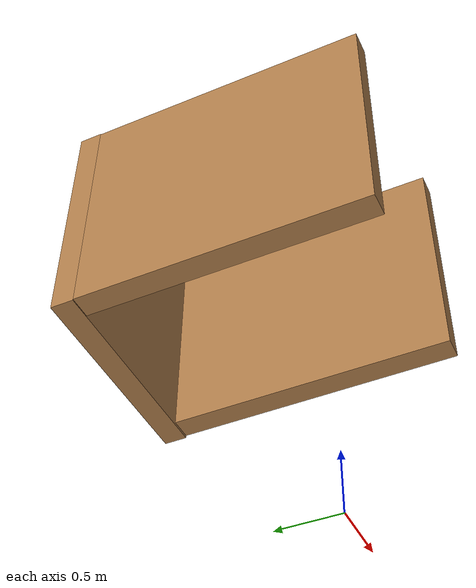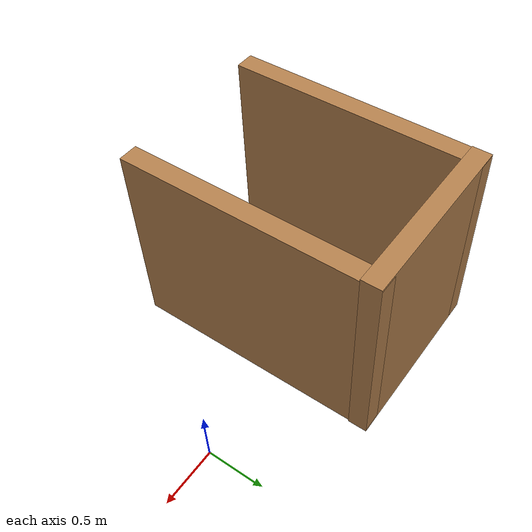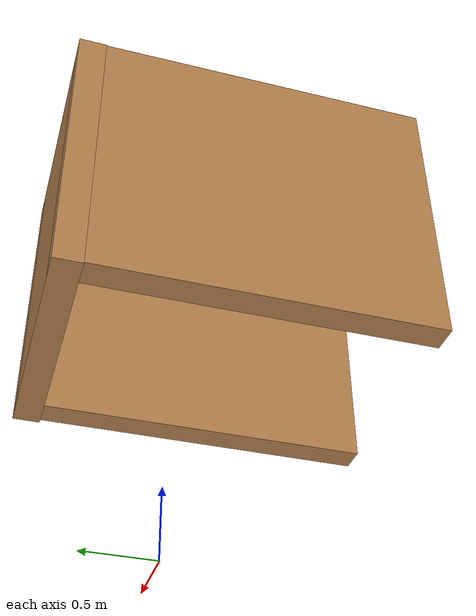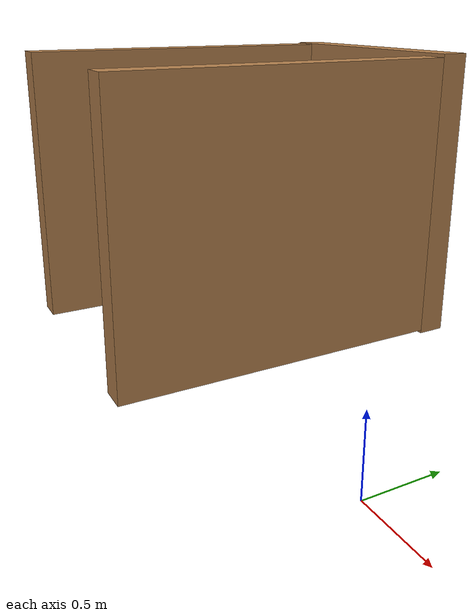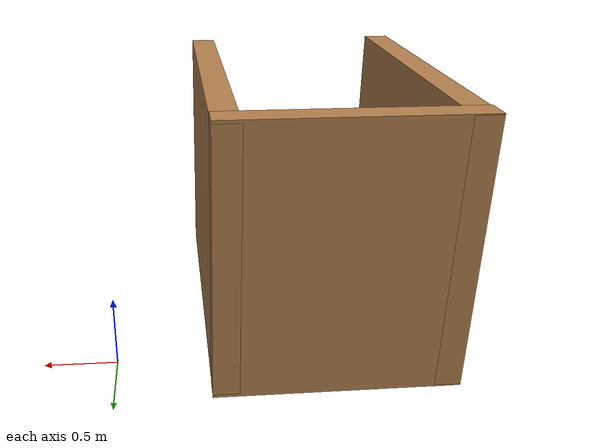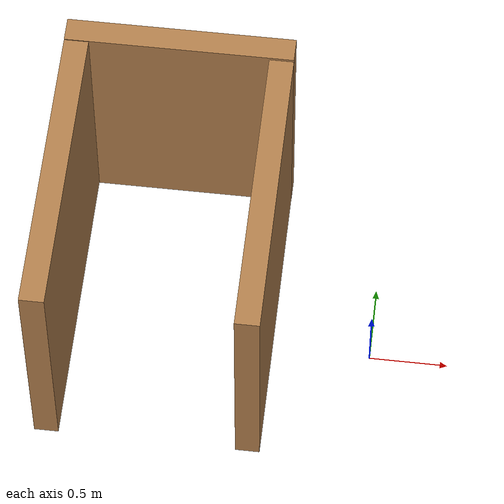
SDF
<?xml version='1.0'?>
<sdf version='1.7'>
  <model name='prova'>
    <link name='Wall_10'>
      <pose>-1.30093 0.924993 0 0 -0 3.14159</pose>
      <self_collide>0</self_collide>
      <enable_wind>0</enable_wind>
      <kinematic>0</kinematic>
      <inertial>
        <inertia>
          <ixx>0</ixx>
          <ixy>0</ixy>
          <ixz>0</ixz>
          <iyy>0</iyy>
          <iyz>0</iyz>
          <izz>0</izz>
        </inertia>
        <mass>0</mass>
        <pose>0 0 0 0 -0 0</pose>
      </inertial>
      <visual name='Wall_10_Visual'>
        <pose>0 0 1.25 0 -0 0</pose>
        <geometry>
          <box>
            <size>1.4 0.15 1.5828</size>
          </box>
        </geometry>
        <material>
          <script>
            <uri>file://media/materials/scripts/gazebo.material</uri>
            <name>Gazebo/Wood</name>
          </script>
          <ambient>1 1 1 1</ambient>
          <shader type='pixel'/>
        </material>
        <meta>
          <layer>0</layer>
        </meta>
        <transparency>0</transparency>
        <cast_shadows>1</cast_shadows>
      </visual>
      <collision name='Wall_10_Collision'>
        <laser_retro>0</laser_retro>
        <max_contacts>10</max_contacts>
        <pose>0 0 1.25 0 -0 0</pose>
        <geometry>
          <box>
            <size>1.4 0.15 1.5828</size>
          </box>
        </geometry>
        <surface>
          <friction>
            <ode>
              <mu>1</mu>
              <mu2>1</mu2>
              <fdir1>0 0 0</fdir1>
              <slip1>0</slip1>
              <slip2>0</slip2>
            </ode>
            <torsional>
              <coefficient>1</coefficient>
              <patch_radius>0</patch_radius>
              <surface_radius>0</surface_radius>
              <use_patch_radius>1</use_patch_radius>
              <ode>
                <slip>0</slip>
              </ode>
            </torsional>
          </friction>
          <bounce>
            <restitution_coefficient>0</restitution_coefficient>
            <threshold>1e+06</threshold>
          </bounce>
          <contact>
            <collide_without_contact>0</collide_without_contact>
            <collide_without_contact_bitmask>1</collide_without_contact_bitmask>
            <collide_bitmask>1</collide_bitmask>
            <ode>
              <soft_cfm>0</soft_cfm>
              <soft_erp>0.2</soft_erp>
              <kp>1e+13</kp>
              <kd>1</kd>
              <max_vel>0.01</max_vel>
              <min_depth>0</min_depth>
            </ode>
            <bullet>
              <split_impulse>1</split_impulse>
              <split_impulse_penetration_threshold>-0.01</split_impulse_penetration_threshold>
              <soft_cfm>0</soft_cfm>
              <soft_erp>0.2</soft_erp>
              <kp>1e+13</kp>
              <kd>1</kd>
            </bullet>
          </contact>
        </surface>
      </collision>
    </link>
    <link name='Wall_11'>
      <pose>-1.92593 0.004993 0 0 0 -1.5708</pose>
      <self_collide>0</self_collide>
      <enable_wind>0</enable_wind>
      <kinematic>0</kinematic>
      <inertial>
        <inertia>
          <ixx>0</ixx>
          <ixy>0</ixy>
          <ixz>0</ixz>
          <iyy>0</iyy>
          <iyz>0</iyz>
          <izz>0</izz>
        </inertia>
        <mass>0</mass>
        <pose>0 0 0 0 -0 0</pose>
      </inertial>
      <visual name='Wall_11_Visual'>
        <pose>0 0 1.25 0 -0 0</pose>
        <geometry>
          <box>
            <size>1.99003 0.15 1.57049</size>
          </box>
        </geometry>
        <material>
          <script>
            <uri>file://media/materials/scripts/gazebo.material</uri>
            <name>Gazebo/Wood</name>
          </script>
          <ambient>1 1 1 1</ambient>
          <shader type='pixel'/>
        </material>
        <meta>
          <layer>0</layer>
        </meta>
        <transparency>0</transparency>
        <cast_shadows>1</cast_shadows>
      </visual>
      <collision name='Wall_11_Collision'>
        <laser_retro>0</laser_retro>
        <max_contacts>10</max_contacts>
        <pose>0 0 1.25 0 -0 0</pose>
        <geometry>
          <box>
            <size>1.99003 0.15 1.57049</size>
          </box>
        </geometry>
        <surface>
          <friction>
            <ode>
              <mu>1</mu>
              <mu2>1</mu2>
              <fdir1>0 0 0</fdir1>
              <slip1>0</slip1>
              <slip2>0</slip2>
            </ode>
            <torsional>
              <coefficient>1</coefficient>
              <patch_radius>0</patch_radius>
              <surface_radius>0</surface_radius>
              <use_patch_radius>1</use_patch_radius>
              <ode>
                <slip>0</slip>
              </ode>
            </torsional>
          </friction>
          <bounce>
            <restitution_coefficient>0</restitution_coefficient>
            <threshold>1e+06</threshold>
          </bounce>
          <contact>
            <collide_without_contact>0</collide_without_contact>
            <collide_without_contact_bitmask>1</collide_without_contact_bitmask>
            <collide_bitmask>1</collide_bitmask>
            <ode>
              <soft_cfm>0</soft_cfm>
              <soft_erp>0.2</soft_erp>
              <kp>1e+13</kp>
              <kd>1</kd>
              <max_vel>0.01</max_vel>
              <min_depth>0</min_depth>
            </ode>
            <bullet>
              <split_impulse>1</split_impulse>
              <split_impulse_penetration_threshold>-0.01</split_impulse_penetration_threshold>
              <soft_cfm>0</soft_cfm>
              <soft_erp>0.2</soft_erp>
              <kp>1e+13</kp>
              <kd>1</kd>
            </bullet>
          </contact>
        </surface>
      </collision>
    </link>
    <link name='Wall_9'>
      <pose>-0.675932 -7e-06 0 0 -0 1.5708</pose>
      <self_collide>0</self_collide>
      <enable_wind>0</enable_wind>
      <kinematic>0</kinematic>
      <inertial>
        <inertia>
          <ixx>0</ixx>
          <ixy>0</ixy>
          <ixz>0</ixz>
          <iyy>0</iyy>
          <iyz>0</iyz>
          <izz>0</izz>
        </inertia>
        <mass>0</mass>
        <pose>0 0 0 0 -0 0</pose>
      </inertial>
      <visual name='Wall_9_Visual'>
        <pose>0 0 1.25 0 -0 0</pose>
        <geometry>
          <box>
            <size>2 0.15 1.54714</size>
          </box>
        </geometry>
        <material>
          <script>
            <uri>file://media/materials/scripts/gazebo.material</uri>
            <name>Gazebo/Wood</name>
          </script>
          <ambient>1 1 1 1</ambient>
          <shader type='pixel'/>
        </material>
        <meta>
          <layer>0</layer>
        </meta>
        <transparency>0</transparency>
        <cast_shadows>1</cast_shadows>
      </visual>
      <collision name='Wall_9_Collision'>
        <laser_retro>0</laser_retro>
        <max_contacts>10</max_contacts>
        <pose>0 0 1.25 0 -0 0</pose>
        <geometry>
          <box>
            <size>2 0.15 1.54714</size>
          </box>
        </geometry>
        <surface>
          <friction>
            <ode>
              <mu>1</mu>
              <mu2>1</mu2>
              <fdir1>0 0 0</fdir1>
              <slip1>0</slip1>
              <slip2>0</slip2>
            </ode>
            <torsional>
              <coefficient>1</coefficient>
              <patch_radius>0</patch_radius>
              <surface_radius>0</surface_radius>
              <use_patch_radius>1</use_patch_radius>
              <ode>
                <slip>0</slip>
              </ode>
            </torsional>
          </friction>
          <bounce>
            <restitution_coefficient>0</restitution_coefficient>
            <threshold>1e+06</threshold>
          </bounce>
          <contact>
            <collide_without_contact>0</collide_without_contact>
            <collide_without_contact_bitmask>1</collide_without_contact_bitmask>
            <collide_bitmask>1</collide_bitmask>
            <ode>
              <soft_cfm>0</soft_cfm>
              <soft_erp>0.2</soft_erp>
              <kp>1e+13</kp>
              <kd>1</kd>
              <max_vel>0.01</max_vel>
              <min_depth>0</min_depth>
            </ode>
            <bullet>
              <split_impulse>1</split_impulse>
              <split_impulse_penetration_threshold>-0.01</split_impulse_penetration_threshold>
              <soft_cfm>0</soft_cfm>
              <soft_erp>0.2</soft_erp>
              <kp>1e+13</kp>
              <kd>1</kd>
            </bullet>
          </contact>
        </surface>
      </collision>
    </link>
    <static>1</static>
    <allow_auto_disable>1</allow_auto_disable>
  </model>
</sdf>
